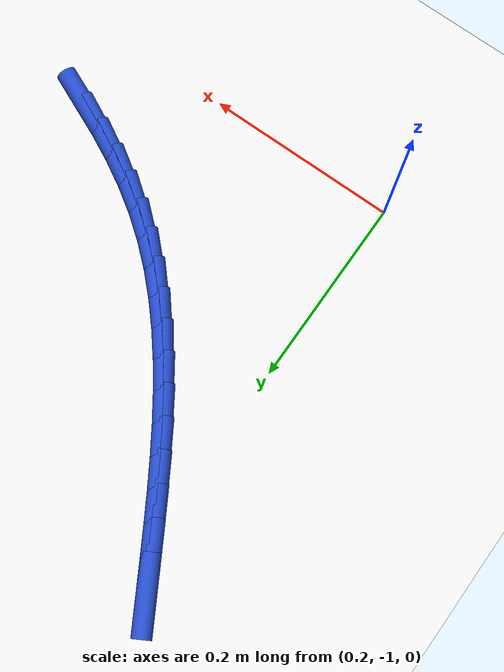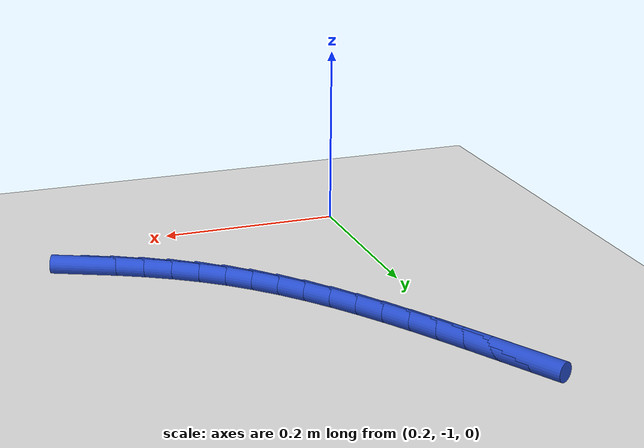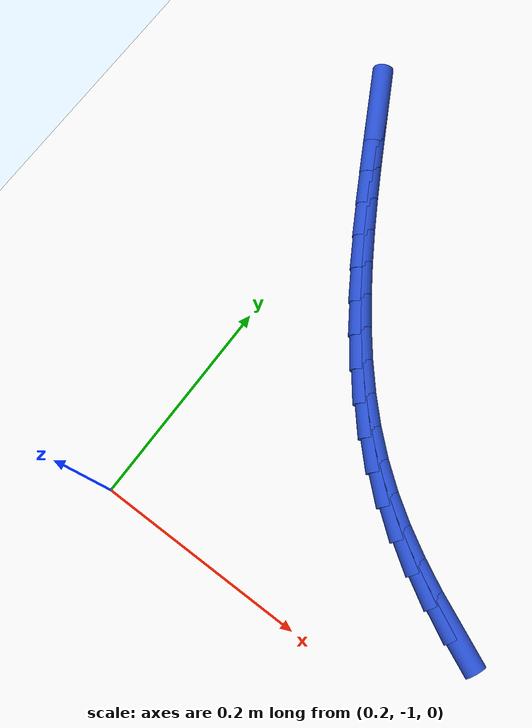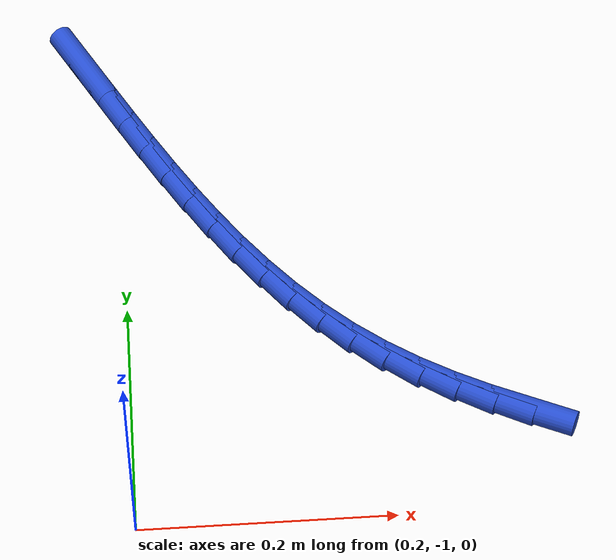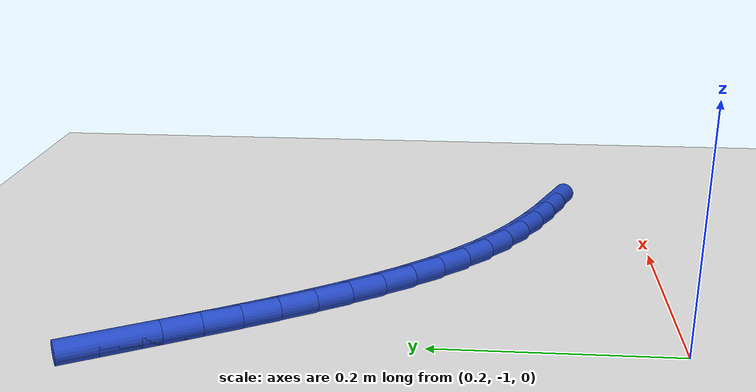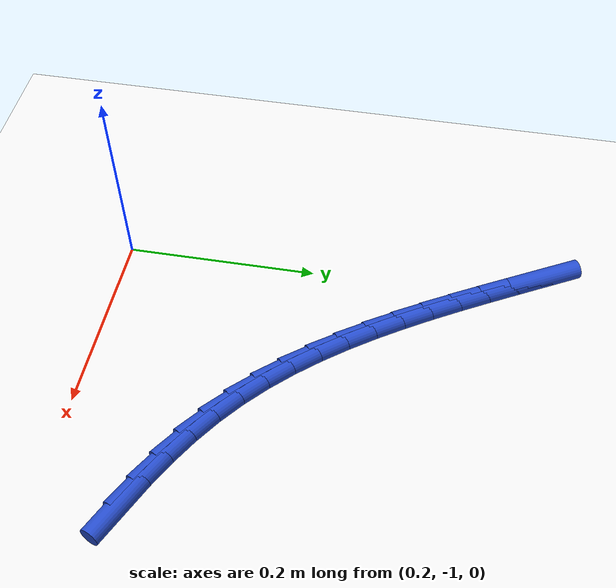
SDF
<sdf version="1.6">
 <world name="default">
  <model name="ground_plane">
   <static>1</static>
   <link name="link">
    <collision name="collision">
     <geometry><plane><normal>0 0 1</normal><size>100 100</size></plane></geometry>
     <surface><friction><ode><mu>100</mu><mu2>50</mu2></ode></friction></surface>
    </collision>
    <visual name="visual">
     <cast_shadows>0</cast_shadows>
     <geometry><plane><normal>0 0 1</normal><size>100 100</size></plane></geometry>
     <material>
      <script><uri>file://media/materials/scripts/gazebo.material</uri><name>Gazebo/WhiteGlow</name></script>
     </material>
    </visual>
   </link>
  </model>
  <model name="line">
   <link name="link_175">
    <pose>0.5056654108928483 -0.9173683861891514 0.01 0 1.57 -0.41882525727283537</pose>
    <collision name="collision">
     <geometry><cylinder><radius>0.01</radius><length>0.08</length></cylinder></geometry>
    </collision>
    <visual name="visual">
     <material>
      <script><name>Gazebo/Blue</name><uri>file://media/materials/scripts/gazebo.material</uri></script>
     </material>
     <geometry><cylinder><radius>0.01</radius><length>0.08</length></cylinder></geometry>
    </visual>
   </link>
   <link name="link_176">
    <pose>0.4771287965143241 -0.9046649051883446 0.01 0 1.57 -0.46727498855127114</pose>
    <collision name="collision">
     <geometry><cylinder><radius>0.01</radius><length>0.08</length></cylinder></geometry>
    </collision>
    <visual name="visual">
     <material>
      <script><name>Gazebo/Blue</name><uri>file://media/materials/scripts/gazebo.material</uri></script>
     </material>
     <geometry><cylinder><radius>0.01</radius><length>0.08</length></cylinder></geometry>
    </visual>
   </link>
   <link name="link_177">
    <pose>0.44949164400239483 -0.890720787636477 0.01 0 1.57 -0.5229071217478967</pose>
    <collision name="collision">
     <geometry><cylinder><radius>0.01</radius><length>0.08</length></cylinder></geometry>
    </collision>
    <visual name="visual">
     <material>
      <script><name>Gazebo/Blue</name><uri>file://media/materials/scripts/gazebo.material</uri></script>
     </material>
     <geometry><cylinder><radius>0.01</radius><length>0.08</length></cylinder></geometry>
    </visual>
   </link>
   <link name="link_178">
    <pose>0.42289654954110323 -0.8753906190366564 0.01 0 1.57 -0.5858564661363148</pose>
    <collision name="collision">
     <geometry><cylinder><radius>0.01</radius><length>0.08</length></cylinder></geometry>
    </collision>
    <visual name="visual">
     <material>
      <script><name>Gazebo/Blue</name><uri>file://media/materials/scripts/gazebo.material</uri></script>
     </material>
     <geometry><cylinder><radius>0.01</radius><length>0.08</length></cylinder></geometry>
    </visual>
   </link>
   <link name="link_179">
    <pose>0.3974861093144924 -0.8585289848919903 0.01 0 1.57 -0.6559427695493633</pose>
    <collision name="collision">
     <geometry><cylinder><radius>0.01</radius><length>0.08</length></cylinder></geometry>
    </collision>
    <visual name="visual">
     <material>
      <script><name>Gazebo/Blue</name><uri>file://media/materials/scripts/gazebo.material</uri></script>
     </material>
     <geometry><cylinder><radius>0.01</radius><length>0.08</length></cylinder></geometry>
    </visual>
   </link>
   <link name="link_180">
    <pose>0.37340113029147226 -0.8399926015534022 0.01 0 1.57 -0.7276438337387791</pose>
    <collision name="collision">
     <geometry><cylinder><radius>0.01</radius><length>0.08</length></cylinder></geometry>
    </collision>
    <visual name="visual">
     <material>
      <script><name>Gazebo/Blue</name><uri>file://media/materials/scripts/gazebo.material</uri></script>
     </material>
     <geometry><cylinder><radius>0.01</radius><length>0.08</length></cylinder></geometry>
    </visual>
   </link>
   <link name="link_181">
    <pose>0.35068234919933594 -0.8197573630222148 0.01 0 1.57 -0.7926917567911788</pose>
    <collision name="collision">
     <geometry><cylinder><radius>0.01</radius><length>0.08</length></cylinder></geometry>
    </collision>
    <visual name="visual">
     <material>
      <script><name>Gazebo/Blue</name><uri>file://media/materials/scripts/gazebo.material</uri></script>
     </material>
     <geometry><cylinder><radius>0.01</radius><length>0.08</length></cylinder></geometry>
    </visual>
   </link>
   <link name="link_182">
    <pose>0.3292194425125931 -0.7979790669924451 0.01 0 1.57 -0.8501810825315648</pose>
    <collision name="collision">
     <geometry><cylinder><radius>0.01</radius><length>0.08</length></cylinder></geometry>
    </collision>
    <visual name="visual">
     <material>
      <script><name>Gazebo/Blue</name><uri>file://media/materials/scripts/gazebo.material</uri></script>
     </material>
     <geometry><cylinder><radius>0.01</radius><length>0.08</length></cylinder></geometry>
    </visual>
   </link>
   <link name="link_183">
    <pose>0.30888955421183856 -0.7748284366060175 0.01 0 1.57 -0.9001265853442312</pose>
    <collision name="collision">
     <geometry><cylinder><radius>0.01</radius><length>0.08</length></cylinder></geometry>
    </collision>
    <visual name="visual">
     <material>
      <script><name>Gazebo/Blue</name><uri>file://media/materials/scripts/gazebo.material</uri></script>
     </material>
     <geometry><cylinder><radius>0.01</radius><length>0.08</length></cylinder></geometry>
    </visual>
   </link>
   <link name="link_184">
    <pose>0.28956982827766886 -0.7504761950048581 0.01 0 1.57 -0.9427228921067959</pose>
    <collision name="collision">
     <geometry><cylinder><radius>0.01</radius><length>0.08</length></cylinder></geometry>
    </collision>
    <visual name="visual">
     <material>
      <script><name>Gazebo/Blue</name><uri>file://media/materials/scripts/gazebo.material</uri></script>
     </material>
     <geometry><cylinder><radius>0.01</radius><length>0.08</length></cylinder></geometry>
    </visual>
   </link>
   <link name="link_185">
    <pose>0.2711374086906787 -0.7250930653308908 0.01 0 1.57 -0.9782584907774629</pose>
    <collision name="collision">
     <geometry><cylinder><radius>0.01</radius><length>0.08</length></cylinder></geometry>
    </collision>
    <visual name="visual">
     <material>
      <script><name>Gazebo/Blue</name><uri>file://media/materials/scripts/gazebo.material</uri></script>
     </material>
     <geometry><cylinder><radius>0.01</radius><length>0.08</length></cylinder></geometry>
    </visual>
   </link>
   <link name="link_186">
    <pose>0.2534694394314635 -0.6988497707260405 0.01 0 1.57 -1.0070495195638063</pose>
    <collision name="collision">
     <geometry><cylinder><radius>0.01</radius><length>0.08</length></cylinder></geometry>
    </collision>
    <visual name="visual">
     <material>
      <script><name>Gazebo/Blue</name><uri>file://media/materials/scripts/gazebo.material</uri></script>
     </material>
     <geometry><cylinder><radius>0.01</radius><length>0.08</length></cylinder></geometry>
    </visual>
   </link>
   <link name="link_187">
    <pose>0.23644306448061875 -0.6719170343322322 0.01 0 1.57 -1.029392685046255</pose>
    <collision name="collision">
     <geometry><cylinder><radius>0.01</radius><length>0.08</length></cylinder></geometry>
    </collision>
    <visual name="visual">
     <material>
      <script><name>Gazebo/Blue</name><uri>file://media/materials/scripts/gazebo.material</uri></script>
     </material>
     <geometry><cylinder><radius>0.01</radius><length>0.08</length></cylinder></geometry>
    </visual>
   </link>
   <link name="link_188">
    <pose>0.21993542781873987 -0.6444655792913905 0.01 0 1.57 -1.0455336305359684</pose>
    <collision name="collision">
     <geometry><cylinder><radius>0.01</radius><length>0.08</length></cylinder></geometry>
    </collision>
    <visual name="visual">
     <material>
      <script><name>Gazebo/Blue</name><uri>file://media/materials/scripts/gazebo.material</uri></script>
     </material>
     <geometry><cylinder><radius>0.01</radius><length>0.08</length></cylinder></geometry>
    </visual>
   </link>
   <link name="link_189">
    <pose>0.20382367342642185 -0.6166661287454398 0.01 0 1.57 -1.055646436335207</pose>
    <collision name="collision">
     <geometry><cylinder><radius>0.01</radius><length>0.08</length></cylinder></geometry>
    </collision>
    <visual name="visual">
     <material>
      <script><name>Gazebo/Blue</name><uri>file://media/materials/scripts/gazebo.material</uri></script>
     </material>
     <geometry><cylinder><radius>0.01</radius><length>0.08</length></cylinder></geometry>
    </visual>
   </link>
   <link name="link_190">
    <pose>0.18798494528426077 -0.5886894058363059 0.01 0 1.57 -1.0598218901689593</pose>
    <collision name="collision">
     <geometry><cylinder><radius>0.01</radius><length>0.08</length></cylinder></geometry>
    </collision>
    <visual name="visual">
     <material>
      <script><name>Gazebo/Blue</name><uri>file://media/materials/scripts/gazebo.material</uri></script>
     </material>
     <geometry><cylinder><radius>0.01</radius><length>0.08</length></cylinder></geometry>
    </visual>
   </link>
   <link name="link_191">
    <pose>0.17229642144385598 -0.5607061023592852 0.01 0 1.57 -1.060303211024135</pose>
    <collision name="collision">
     <geometry><cylinder><radius>0.01</radius><length>0.08</length></cylinder></geometry>
    </collision>
    <visual name="visual">
     <material>
      <script><name>Gazebo/Blue</name><uri>file://media/materials/scripts/gazebo.material</uri></script>
     </material>
     <geometry><cylinder><radius>0.01</radius><length>0.08</length></cylinder></geometry>
    </visual>
   </link>
  </model>
 </world>
</sdf>
